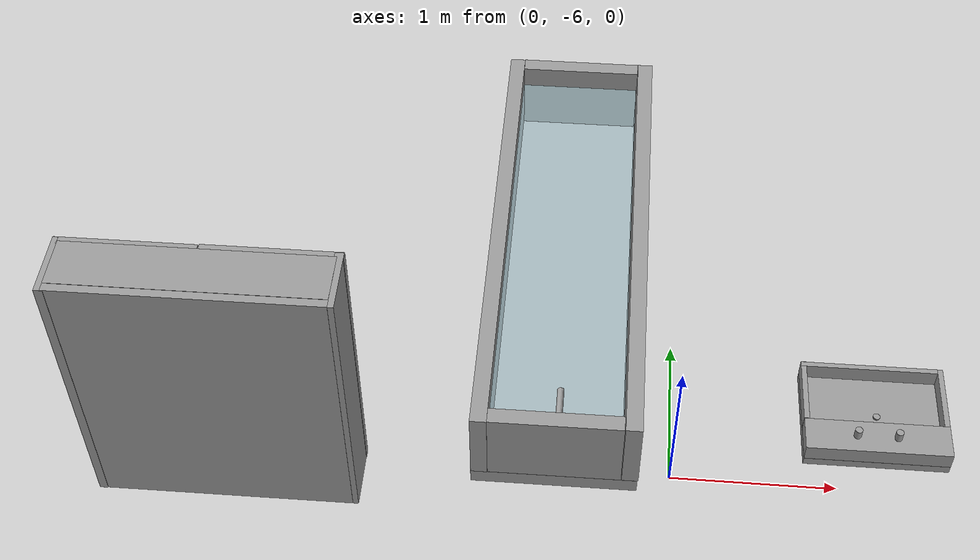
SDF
<sdf version="1.7">
 <world name="default">
  <model name="ground_plane">
   <static>1</static>
   <link name="link">
    <collision name="collision">
     <geometry><plane><normal>0 0 1</normal><size>100 100</size></plane></geometry>
     <surface>
      <contact><collide_bitmask>65535</collide_bitmask></contact>
      <friction><ode><mu>100</mu><mu2>50</mu2></ode></friction>
     </surface>
    </collision>
    <visual name="visual">
     <cast_shadows>0</cast_shadows>
     <geometry><plane><normal>0 0 1</normal><size>100 100</size></plane></geometry>
     <material>
      <script><uri>file://media/materials/scripts/gazebo.material</uri><name>Gazebo/Grey</name></script>
     </material>
    </visual>
   </link>
  </model>
  <model name="my_bath">
   <link name="link_0">
    <inertial>
     <mass>1</mass>
     <inertia>
      <ixx>0.166667</ixx>
      <ixy>0</ixy>
      <ixz>0</ixz>
      <iyy>0.166667</iyy>
      <iyz>0</iyz>
      <izz>0.166667</izz>
     </inertia>
     <pose>0 0 1 0 -0 0</pose>
    </inertial>
    <pose>-0.340094 1.14387 0 0 -0 0</pose>
    <gravity>0</gravity>
    <visual name="visual">
     <pose>0 0 0.045 0 -0 0</pose>
     <geometry><box><size>1 3.2 0.1</size></box></geometry>
     <material>
      <lighting>1</lighting>
      <script><uri>file://media/materials/scripts/gazebo.material</uri><name>Gazebo/Grey</name></script>
      <shader type="pixel"><normal_map>__default__</normal_map></shader>
      <ambient>0.8 0.8 0.8 1</ambient>
      <diffuse>0.65 0.65 0.65 1</diffuse>
      <specular>0.01 0.01 0.01 1</specular>
      <emissive>0.1 0.1 0.1 1</emissive>
     </material>
    </visual>
    <collision name="collision">
     <pose>0 0 0.045 0 -0 0</pose>
     <geometry><box><size>1 3.2 0.1</size></box></geometry>
     <surface>
      <friction>
       <ode><mu>1</mu><mu2>1</mu2><fdir1>0 0 0</fdir1><slip1>0</slip1><slip2>0</slip2></ode>
       <torsional>
        <coefficient>1</coefficient>
        <patch_radius>0</patch_radius>
        <surface_radius>0</surface_radius>
        <use_patch_radius>1</use_patch_radius>
        <ode><slip>0</slip></ode>
       </torsional>
      </friction>
      <bounce><restitution_coefficient>0</restitution_coefficient><threshold>1e+06</threshold></bounce>
      <contact>
       <collide_without_contact>0</collide_without_contact>
       <collide_without_contact_bitmask>1</collide_without_contact_bitmask>
       <collide_bitmask>1</collide_bitmask>
       <ode>
        <soft_cfm>0</soft_cfm>
        <soft_erp>0.2</soft_erp>
        <kp>1e+13</kp>
        <kd>1</kd>
        <max_vel>0.01</max_vel>
        <min_depth>0</min_depth>
       </ode>
       <bullet>
        <split_impulse>1</split_impulse>
        <split_impulse_penetration_threshold>-0.01</split_impulse_penetration_threshold>
        <soft_cfm>0</soft_cfm>
        <soft_erp>0.2</soft_erp>
        <kp>1e+13</kp>
        <kd>1</kd>
       </bullet>
      </contact>
     </surface>
    </collision>
   </link>
   <link name="link_0_clone">
    <inertial>
     <mass>1</mass>
     <inertia>
      <ixx>0.166667</ixx>
      <ixy>0</ixy>
      <ixz>0</ixz>
      <iyy>0.166667</iyy>
      <iyz>0</iyz>
      <izz>0.166667</izz>
     </inertia>
     <pose>0 0 1 0 -0 0</pose>
    </inertial>
    <pose>0.070286 1.14392 0.346232 0 1.5707 0</pose>
    <gravity>0</gravity>
    <visual name="visual">
     <pose>0 0 0.045 0 -0 0</pose>
     <geometry><box><size>0.5 3.2 0.1</size></box></geometry>
     <material>
      <lighting>1</lighting>
      <script><uri>file://media/materials/scripts/gazebo.material</uri><name>Gazebo/Grey</name></script>
      <shader type="pixel"><normal_map>__default__</normal_map></shader>
      <ambient>0.8 0.8 0.8 1</ambient>
      <diffuse>0.65 0.65 0.65 1</diffuse>
      <specular>0.01 0.01 0.01 1</specular>
      <emissive>0.1 0.1 0.1 1</emissive>
     </material>
    </visual>
    <collision name="collision">
     <pose>0 0 0.045 0 -0 0</pose>
     <geometry><box><size>0.5 3.2 0.1</size></box></geometry>
     <surface>
      <friction>
       <ode><mu>1</mu><mu2>1</mu2><fdir1>0 0 0</fdir1><slip1>0</slip1><slip2>0</slip2></ode>
       <torsional>
        <coefficient>1</coefficient>
        <patch_radius>0</patch_radius>
        <surface_radius>0</surface_radius>
        <use_patch_radius>1</use_patch_radius>
        <ode><slip>0</slip></ode>
       </torsional>
      </friction>
      <bounce><restitution_coefficient>0</restitution_coefficient><threshold>1e+06</threshold></bounce>
      <contact>
       <collide_without_contact>0</collide_without_contact>
       <collide_without_contact_bitmask>1</collide_without_contact_bitmask>
       <collide_bitmask>1</collide_bitmask>
       <ode>
        <soft_cfm>0</soft_cfm>
        <soft_erp>0.2</soft_erp>
        <kp>1e+13</kp>
        <kd>1</kd>
        <max_vel>0.01</max_vel>
        <min_depth>0</min_depth>
       </ode>
       <bullet>
        <split_impulse>1</split_impulse>
        <split_impulse_penetration_threshold>-0.01</split_impulse_penetration_threshold>
        <soft_cfm>0</soft_cfm>
        <soft_erp>0.2</soft_erp>
        <kp>1e+13</kp>
        <kd>1</kd>
       </bullet>
      </contact>
     </surface>
    </collision>
   </link>
   <link name="link_0_clone_clone">
    <inertial>
     <mass>1</mass>
     <inertia>
      <ixx>0.166667</ixx>
      <ixy>0</ixy>
      <ixz>0</ixz>
      <iyy>0.166667</iyy>
      <iyz>0</iyz>
      <izz>0.166667</izz>
     </inertia>
     <pose>0 0 1 0 -0 0</pose>
    </inertial>
    <pose>-0.834084 1.14237 0.344002 0 1.5707 0</pose>
    <gravity>0</gravity>
    <visual name="visual">
     <pose>0 0 0.045 0 -0 0</pose>
     <geometry><box><size>0.5 3.2 0.1</size></box></geometry>
     <material>
      <lighting>1</lighting>
      <script><uri>file://media/materials/scripts/gazebo.material</uri><name>Gazebo/Grey</name></script>
      <shader type="pixel"><normal_map>__default__</normal_map></shader>
      <ambient>0.8 0.8 0.8 1</ambient>
      <diffuse>0.65 0.65 0.65 1</diffuse>
      <specular>0.01 0.01 0.01 1</specular>
      <emissive>0.1 0.1 0.1 1</emissive>
     </material>
    </visual>
    <collision name="collision">
     <pose>0 0 0.045 0 -0 0</pose>
     <geometry><box><size>0.5 3.2 0.1</size></box></geometry>
     <surface>
      <friction>
       <ode><mu>1</mu><mu2>1</mu2><fdir1>0 0 0</fdir1><slip1>0</slip1><slip2>0</slip2></ode>
       <torsional>
        <coefficient>1</coefficient>
        <patch_radius>0</patch_radius>
        <surface_radius>0</surface_radius>
        <use_patch_radius>1</use_patch_radius>
        <ode><slip>0</slip></ode>
       </torsional>
      </friction>
      <bounce><restitution_coefficient>0</restitution_coefficient><threshold>1e+06</threshold></bounce>
      <contact>
       <collide_without_contact>0</collide_without_contact>
       <collide_without_contact_bitmask>1</collide_without_contact_bitmask>
       <collide_bitmask>1</collide_bitmask>
       <ode>
        <soft_cfm>0</soft_cfm>
        <soft_erp>0.2</soft_erp>
        <kp>1e+13</kp>
        <kd>1</kd>
        <max_vel>0.01</max_vel>
        <min_depth>0</min_depth>
       </ode>
       <bullet>
        <split_impulse>1</split_impulse>
        <split_impulse_penetration_threshold>-0.01</split_impulse_penetration_threshold>
        <soft_cfm>0</soft_cfm>
        <soft_erp>0.2</soft_erp>
        <kp>1e+13</kp>
        <kd>1</kd>
       </bullet>
      </contact>
     </surface>
    </collision>
   </link>
   <link name="link_0_clone_clone_clone">
    <inertial>
     <mass>1</mass>
     <inertia>
      <ixx>0.166667</ixx>
      <ixy>0</ixy>
      <ixz>0</ixz>
      <iyy>0.166667</iyy>
      <iyz>0</iyz>
      <izz>0.166667</izz>
     </inertia>
     <pose>0 0 1 0 -0 0</pose>
    </inertial>
    <pose>-0.383879 -0.405622 0.343978 0 1.5707 0</pose>
    <gravity>0</gravity>
    <visual name="visual">
     <pose>0 0 0.045 1.5707 -0 0</pose>
     <geometry><box><size>0.5 0.8 0.1</size></box></geometry>
     <material>
      <lighting>1</lighting>
      <script><uri>file://media/materials/scripts/gazebo.material</uri><name>Gazebo/Grey</name></script>
      <shader type="pixel"><normal_map>__default__</normal_map></shader>
      <ambient>0.8 0.8 0.8 1</ambient>
      <diffuse>0.65 0.65 0.65 1</diffuse>
      <specular>0.01 0.01 0.01 1</specular>
      <emissive>0.1 0.1 0.1 1</emissive>
     </material>
    </visual>
    <collision name="collision">
     <pose>0 0 0.045 1.5707 -0 0</pose>
     <geometry><box><size>0.5 0.8 0.1</size></box></geometry>
     <surface>
      <friction>
       <ode><mu>1</mu><mu2>1</mu2><fdir1>0 0 0</fdir1><slip1>0</slip1><slip2>0</slip2></ode>
       <torsional>
        <coefficient>1</coefficient>
        <patch_radius>0</patch_radius>
        <surface_radius>0</surface_radius>
        <use_patch_radius>1</use_patch_radius>
        <ode><slip>0</slip></ode>
       </torsional>
      </friction>
      <bounce><restitution_coefficient>0</restitution_coefficient><threshold>1e+06</threshold></bounce>
      <contact>
       <collide_without_contact>0</collide_without_contact>
       <collide_without_contact_bitmask>1</collide_without_contact_bitmask>
       <collide_bitmask>1</collide_bitmask>
       <ode>
        <soft_cfm>0</soft_cfm>
        <soft_erp>0.2</soft_erp>
        <kp>1e+13</kp>
        <kd>1</kd>
        <max_vel>0.01</max_vel>
        <min_depth>0</min_depth>
       </ode>
       <bullet>
        <split_impulse>1</split_impulse>
        <split_impulse_penetration_threshold>-0.01</split_impulse_penetration_threshold>
        <soft_cfm>0</soft_cfm>
        <soft_erp>0.2</soft_erp>
        <kp>1e+13</kp>
        <kd>1</kd>
       </bullet>
      </contact>
     </surface>
    </collision>
   </link>
   <link name="link_0_clone_clone_clone_clone">
    <inertial>
     <mass>1</mass>
     <inertia>
      <ixx>0.166667</ixx>
      <ixy>0</ixy>
      <ixz>0</ixz>
      <iyy>0.166667</iyy>
      <iyz>0</iyz>
      <izz>0.166667</izz>
     </inertia>
     <pose>0 0 1 0 -0 0</pose>
    </inertial>
    <pose>-0.382409 2.69474 0.343978 0 1.5707 0</pose>
    <gravity>0</gravity>
    <visual name="visual">
     <pose>0 0 0.045 1.5707 -0 0</pose>
     <geometry><box><size>0.5 0.8 0.1</size></box></geometry>
     <material>
      <lighting>1</lighting>
      <script><uri>file://media/materials/scripts/gazebo.material</uri><name>Gazebo/Grey</name></script>
      <shader type="pixel"><normal_map>__default__</normal_map></shader>
      <ambient>0.8 0.8 0.8 1</ambient>
      <diffuse>0.65 0.65 0.65 1</diffuse>
      <specular>0.01 0.01 0.01 1</specular>
      <emissive>0.1 0.1 0.1 1</emissive>
     </material>
    </visual>
    <collision name="collision">
     <pose>0 0 0.045 1.5707 -0 0</pose>
     <geometry><box><size>0.5 0.8 0.1</size></box></geometry>
     <surface>
      <friction>
       <ode><mu>1</mu><mu2>1</mu2><fdir1>0 0 0</fdir1><slip1>0</slip1><slip2>0</slip2></ode>
       <torsional>
        <coefficient>1</coefficient>
        <patch_radius>0</patch_radius>
        <surface_radius>0</surface_radius>
        <use_patch_radius>1</use_patch_radius>
        <ode><slip>0</slip></ode>
       </torsional>
      </friction>
      <bounce><restitution_coefficient>0</restitution_coefficient><threshold>1e+06</threshold></bounce>
      <contact>
       <collide_without_contact>0</collide_without_contact>
       <collide_without_contact_bitmask>1</collide_without_contact_bitmask>
       <collide_bitmask>1</collide_bitmask>
       <ode>
        <soft_cfm>0</soft_cfm>
        <soft_erp>0.2</soft_erp>
        <kp>1e+13</kp>
        <kd>1</kd>
        <max_vel>0.01</max_vel>
        <min_depth>0</min_depth>
       </ode>
       <bullet>
        <split_impulse>1</split_impulse>
        <split_impulse_penetration_threshold>-0.01</split_impulse_penetration_threshold>
        <soft_cfm>0</soft_cfm>
        <soft_erp>0.2</soft_erp>
        <kp>1e+13</kp>
        <kd>1</kd>
       </bullet>
      </contact>
     </surface>
    </collision>
   </link>
   <link name="link_1">
    <inertial>
     <mass>1</mass>
     <inertia>
      <ixx>0.166667</ixx>
      <ixy>0</ixy>
      <ixz>0</ixz>
      <iyy>0.166667</iyy>
      <iyz>0</iyz>
      <izz>0.166667</izz>
     </inertia>
    </inertial>
    <pose>-0.340085 1.16225 0 0 -0 0</pose>
    <visual name="visual">
     <pose>0 0 0.27 0 -0 0</pose>
     <geometry><box><size>0.8 3 0.35</size></box></geometry>
     <material>
      <lighting>1</lighting>
      <script><uri>file://media/materials/scripts/gazebo.material</uri><name>Gazebo/Grey</name></script>
      <shader type="pixel"><normal_map>__default__</normal_map></shader>
      <ambient>0.75 0.93 0.98 0.4</ambient>
      <diffuse>0.75 0.93 0.98 0.4</diffuse>
      <specular>0.01 0.01 0.01 0.4</specular>
      <emissive>0 0 0 0.4</emissive>
     </material>
     <transparency>0.5</transparency>
    </visual>
    <collision name="collision">
     <pose>0 0 0.27 0 -0 0</pose>
     <geometry><box><size>0.8 3 0.35</size></box></geometry>
     <surface>
      <friction>
       <ode><mu>1</mu><mu2>1</mu2><fdir1>0 0 0</fdir1><slip1>0</slip1><slip2>0</slip2></ode>
       <torsional>
        <coefficient>1</coefficient>
        <patch_radius>0</patch_radius>
        <surface_radius>0</surface_radius>
        <use_patch_radius>1</use_patch_radius>
        <ode><slip>0</slip></ode>
       </torsional>
      </friction>
      <bounce><restitution_coefficient>0</restitution_coefficient><threshold>1e+06</threshold></bounce>
      <contact>
       <collide_without_contact>0</collide_without_contact>
       <collide_without_contact_bitmask>1</collide_without_contact_bitmask>
       <collide_bitmask>1</collide_bitmask>
       <ode>
        <soft_cfm>0</soft_cfm>
        <soft_erp>0.2</soft_erp>
        <kp>1e+13</kp>
        <kd>1</kd>
        <max_vel>0.01</max_vel>
        <min_depth>0</min_depth>
       </ode>
       <bullet>
        <split_impulse>1</split_impulse>
        <split_impulse_penetration_threshold>-0.01</split_impulse_penetration_threshold>
        <soft_cfm>0</soft_cfm>
        <soft_erp>0.2</soft_erp>
        <kp>1e+13</kp>
        <kd>1</kd>
       </bullet>
      </contact>
     </surface>
    </collision>
   </link>
   <link name="link_2">
    <inertial>
     <mass>1</mass>
     <inertia><ixx>0.145833</ixx><ixy>0</ixy><ixz>0</ixz><iyy>0.145833</iyy><iyz>0</iyz><izz>0.125</izz></inertia>
    </inertial>
    <pose>-0.32388 -0.261877 0.559506 0 -0 0</pose>
    <gravity>0</gravity>
    <visual name="visual">
     <pose>0 0 0 1.5707 -0 0</pose>
     <geometry><cylinder><radius>0.02</radius><length>0.2</length></cylinder></geometry>
     <material>
      <lighting>1</lighting>
      <script><uri>file://media/materials/scripts/gazebo.material</uri><name>Gazebo/Grey</name></script>
      <shader type="pixel"><normal_map>__default__</normal_map></shader>
      <ambient>0.8 0.8 0.8 1</ambient>
      <diffuse>0.2 0.2 0.2 1</diffuse>
      <specular>0.01 0.01 0.01 1</specular>
      <emissive>0 0 0 1</emissive>
     </material>
    </visual>
    <collision name="collision">
     <pose>0 0 0 1.5707 -0 0</pose>
     <geometry><cylinder><radius>0.02</radius><length>0.2</length></cylinder></geometry>
     <surface>
      <friction>
       <ode><mu>1</mu><mu2>1</mu2><fdir1>0 0 0</fdir1><slip1>0</slip1><slip2>0</slip2></ode>
       <torsional>
        <coefficient>1</coefficient>
        <patch_radius>0</patch_radius>
        <surface_radius>0</surface_radius>
        <use_patch_radius>1</use_patch_radius>
        <ode><slip>0</slip></ode>
       </torsional>
      </friction>
      <bounce><restitution_coefficient>0</restitution_coefficient><threshold>1e+06</threshold></bounce>
      <contact>
       <collide_without_contact>0</collide_without_contact>
       <collide_without_contact_bitmask>1</collide_without_contact_bitmask>
       <collide_bitmask>1</collide_bitmask>
       <ode>
        <soft_cfm>0</soft_cfm>
        <soft_erp>0.2</soft_erp>
        <kp>1e+13</kp>
        <kd>1</kd>
        <max_vel>0.01</max_vel>
        <min_depth>0</min_depth>
       </ode>
       <bullet>
        <split_impulse>1</split_impulse>
        <split_impulse_penetration_threshold>-0.01</split_impulse_penetration_threshold>
        <soft_cfm>0</soft_cfm>
        <soft_erp>0.2</soft_erp>
        <kp>1e+13</kp>
        <kd>1</kd>
       </bullet>
      </contact>
     </surface>
    </collision>
   </link>
   <static>1</static>
   <pose>-0.35818 -5.6468 0 0 -0 0</pose>
  </model>
  <model name="my_sink">
   <link name="link_1">
    <inertial>
     <mass>1</mass>
     <inertia>
      <ixx>0.166667</ixx>
      <ixy>0</ixy>
      <ixz>0</ixz>
      <iyy>0.166667</iyy>
      <iyz>0</iyz>
      <izz>0.166667</izz>
     </inertia>
    </inertial>
    <pose>-0.339251 0.324347 0.253041 -3e-06 -4e-06 -0</pose>
    <visual name="visual">
     <pose>0 0 0.5 0 -0 0</pose>
     <geometry><box><size>0.8 0.6 0.05</size></box></geometry>
     <material>
      <lighting>1</lighting>
      <script><uri>file://media/materials/scripts/gazebo.material</uri><name>Gazebo/Grey</name></script>
      <shader type="pixel"><normal_map>__default__</normal_map></shader>
      <ambient>0.9 0.9 0.9 1</ambient>
      <diffuse>0.9 0.9 0.9 1</diffuse>
      <specular>0.01 0.01 0.01 1</specular>
      <emissive>0 0 0 1</emissive>
     </material>
    </visual>
    <collision name="collision">
     <pose>0 0 0.5 0 -0 0</pose>
     <geometry><box><size>0.8 0.6 0.05</size></box></geometry>
     <surface>
      <friction>
       <ode><mu>1</mu><mu2>1</mu2><fdir1>0 0 0</fdir1><slip1>0</slip1><slip2>0</slip2></ode>
       <torsional>
        <coefficient>1</coefficient>
        <patch_radius>0</patch_radius>
        <surface_radius>0</surface_radius>
        <use_patch_radius>1</use_patch_radius>
        <ode><slip>0</slip></ode>
       </torsional>
      </friction>
      <bounce><restitution_coefficient>0</restitution_coefficient><threshold>1e+06</threshold></bounce>
      <contact>
       <collide_without_contact>0</collide_without_contact>
       <collide_without_contact_bitmask>1</collide_without_contact_bitmask>
       <collide_bitmask>1</collide_bitmask>
       <ode>
        <soft_cfm>0</soft_cfm>
        <soft_erp>0.2</soft_erp>
        <kp>1e+13</kp>
        <kd>1</kd>
        <max_vel>0.01</max_vel>
        <min_depth>0</min_depth>
       </ode>
       <bullet>
        <split_impulse>1</split_impulse>
        <split_impulse_penetration_threshold>-0.01</split_impulse_penetration_threshold>
        <soft_cfm>0</soft_cfm>
        <soft_erp>0.2</soft_erp>
        <kp>1e+13</kp>
        <kd>1</kd>
       </bullet>
      </contact>
     </surface>
    </collision>
   </link>
   <link name="link_1_0">
    <inertial>
     <mass>1</mass>
     <inertia><ixx>0.145833</ixx><ixy>0</ixy><ixz>0</ixz><iyy>0.145833</iyy><iyz>0</iyz><izz>0.125</izz></inertia>
    </inertial>
    <pose>-0.354606 0.332912 0.806035 0 -0 0</pose>
    <gravity>0</gravity>
    <visual name="visual">
     <geometry><cylinder><radius>0.02</radius><length>0.01</length></cylinder></geometry>
     <material>
      <lighting>1</lighting>
      <script><uri>file://media/materials/scripts/gazebo.material</uri><name>Gazebo/Grey</name></script>
      <shader type="pixel"><normal_map>__default__</normal_map></shader>
      <ambient>0.3 0.3 0.3 0</ambient>
      <diffuse>0.3 0.3 0.3 1</diffuse>
      <specular>0.01 0.01 0.01 1</specular>
      <emissive>0 0 0 1</emissive>
     </material>
    </visual>
    <collision name="collision">
     <geometry><cylinder><radius>0.02</radius><length>0.01</length></cylinder></geometry>
     <surface>
      <friction>
       <ode><mu>1</mu><mu2>1</mu2><fdir1>0 0 0</fdir1><slip1>0</slip1><slip2>0</slip2></ode>
       <torsional>
        <coefficient>1</coefficient>
        <patch_radius>0</patch_radius>
        <surface_radius>0</surface_radius>
        <use_patch_radius>1</use_patch_radius>
        <ode><slip>0</slip></ode>
       </torsional>
      </friction>
      <bounce><restitution_coefficient>0</restitution_coefficient><threshold>1e+06</threshold></bounce>
      <contact>
       <collide_without_contact>0</collide_without_contact>
       <collide_without_contact_bitmask>1</collide_without_contact_bitmask>
       <collide_bitmask>1</collide_bitmask>
       <ode>
        <soft_cfm>0</soft_cfm>
        <soft_erp>0.2</soft_erp>
        <kp>1e+13</kp>
        <kd>1</kd>
        <max_vel>0.01</max_vel>
        <min_depth>0</min_depth>
       </ode>
       <bullet>
        <split_impulse>1</split_impulse>
        <split_impulse_penetration_threshold>-0.01</split_impulse_penetration_threshold>
        <soft_cfm>0</soft_cfm>
        <soft_erp>0.2</soft_erp>
        <kp>1e+13</kp>
        <kd>1</kd>
       </bullet>
      </contact>
     </surface>
    </collision>
   </link>
   <link name="link_1_0_clone">
    <inertial>
     <mass>1</mass>
     <inertia><ixx>0.145833</ixx><ixy>0</ixy><ixz>0</ixz><iyy>0.145833</iyy><iyz>0</iyz><izz>0.125</izz></inertia>
    </inertial>
    <pose>-0.447025 0.525674 0.904806 0 -0 0</pose>
    <visual name="visual">
     <geometry><cylinder><radius>0.021</radius><length>0.06</length></cylinder></geometry>
     <material>
      <lighting>1</lighting>
      <script><uri>file://media/materials/scripts/gazebo.material</uri><name>Gazebo/Grey</name></script>
      <shader type="pixel"><normal_map>__default__</normal_map></shader>
      <ambient>0.3 0.3 0.3 0</ambient>
      <diffuse>0.3 0.3 0.3 1</diffuse>
      <specular>0.01 0.01 0.01 1</specular>
      <emissive>0 0 0 1</emissive>
     </material>
    </visual>
    <collision name="collision">
     <geometry><cylinder><radius>0.021</radius><length>0.06</length></cylinder></geometry>
     <surface>
      <friction>
       <ode><mu>1</mu><mu2>1</mu2><fdir1>0 0 0</fdir1><slip1>0</slip1><slip2>0</slip2></ode>
       <torsional>
        <coefficient>1</coefficient>
        <patch_radius>0</patch_radius>
        <surface_radius>0</surface_radius>
        <use_patch_radius>1</use_patch_radius>
        <ode><slip>0</slip></ode>
       </torsional>
      </friction>
      <bounce><restitution_coefficient>0</restitution_coefficient><threshold>1e+06</threshold></bounce>
      <contact>
       <collide_without_contact>0</collide_without_contact>
       <collide_without_contact_bitmask>1</collide_without_contact_bitmask>
       <collide_bitmask>1</collide_bitmask>
       <ode>
        <soft_cfm>0</soft_cfm>
        <soft_erp>0.2</soft_erp>
        <kp>1e+13</kp>
        <kd>1</kd>
        <max_vel>0.01</max_vel>
        <min_depth>0</min_depth>
       </ode>
       <bullet>
        <split_impulse>1</split_impulse>
        <split_impulse_penetration_threshold>-0.01</split_impulse_penetration_threshold>
        <soft_cfm>0</soft_cfm>
        <soft_erp>0.2</soft_erp>
        <kp>1e+13</kp>
        <kd>1</kd>
       </bullet>
      </contact>
     </surface>
    </collision>
   </link>
   <link name="link_1_0_clone_clone">
    <inertial>
     <mass>1</mass>
     <inertia><ixx>0.145833</ixx><ixy>0</ixy><ixz>0</ixz><iyy>0.145833</iyy><iyz>0</iyz><izz>0.125</izz></inertia>
    </inertial>
    <pose>-0.224674 0.524945 0.904806 0 -0 0</pose>
    <visual name="visual">
     <geometry><cylinder><radius>0.021</radius><length>0.06</length></cylinder></geometry>
     <material>
      <lighting>1</lighting>
      <script><uri>file://media/materials/scripts/gazebo.material</uri><name>Gazebo/Grey</name></script>
      <shader type="pixel"><normal_map>__default__</normal_map></shader>
      <ambient>0.3 0.3 0.3 0</ambient>
      <diffuse>0.3 0.3 0.3 1</diffuse>
      <specular>0.01 0.01 0.01 1</specular>
      <emissive>0 0 0 1</emissive>
     </material>
    </visual>
    <collision name="collision">
     <geometry><cylinder><radius>0.021</radius><length>0.06</length></cylinder></geometry>
     <surface>
      <friction>
       <ode><mu>1</mu><mu2>1</mu2><fdir1>0 0 0</fdir1><slip1>0</slip1><slip2>0</slip2></ode>
       <torsional>
        <coefficient>1</coefficient>
        <patch_radius>0</patch_radius>
        <surface_radius>0</surface_radius>
        <use_patch_radius>1</use_patch_radius>
        <ode><slip>0</slip></ode>
       </torsional>
      </friction>
      <bounce><restitution_coefficient>0</restitution_coefficient><threshold>1e+06</threshold></bounce>
      <contact>
       <collide_without_contact>0</collide_without_contact>
       <collide_without_contact_bitmask>1</collide_without_contact_bitmask>
       <collide_bitmask>1</collide_bitmask>
       <ode>
        <soft_cfm>0</soft_cfm>
        <soft_erp>0.2</soft_erp>
        <kp>1e+13</kp>
        <kd>1</kd>
        <max_vel>0.01</max_vel>
        <min_depth>0</min_depth>
       </ode>
       <bullet>
        <split_impulse>1</split_impulse>
        <split_impulse_penetration_threshold>-0.01</split_impulse_penetration_threshold>
        <soft_cfm>0</soft_cfm>
        <soft_erp>0.2</soft_erp>
        <kp>1e+13</kp>
        <kd>1</kd>
       </bullet>
      </contact>
     </surface>
    </collision>
   </link>
   <link name="link_1_clone">
    <inertial>
     <mass>1</mass>
     <inertia>
      <ixx>0.166667</ixx>
      <ixy>0</ixy>
      <ixz>0</ixz>
      <iyy>0.166667</iyy>
      <iyz>0</iyz>
      <izz>0.166667</izz>
     </inertia>
    </inertial>
    <pose>-0.339505 0.038648 0.327445 -6e-06 -8e-06 0</pose>
    <visual name="visual">
     <pose>0 0 0.5 0 -0 0</pose>
     <geometry><box><size>0.8 0.03 0.1</size></box></geometry>
     <material>
      <lighting>1</lighting>
      <script><uri>file://media/materials/scripts/gazebo.material</uri><name>Gazebo/Grey</name></script>
      <shader type="pixel"><normal_map>__default__</normal_map></shader>
      <ambient>0.9 0.9 0.9 1</ambient>
      <diffuse>0.9 0.9 0.9 1</diffuse>
      <specular>0.01 0.01 0.01 1</specular>
      <emissive>0 0 0 1</emissive>
     </material>
    </visual>
    <collision name="collision">
     <pose>0 0 0.5 0 -0 0</pose>
     <geometry><box><size>0.8 0.03 0.1</size></box></geometry>
     <surface>
      <friction>
       <ode><mu>1</mu><mu2>1</mu2><fdir1>0 0 0</fdir1><slip1>0</slip1><slip2>0</slip2></ode>
       <torsional>
        <coefficient>1</coefficient>
        <patch_radius>0</patch_radius>
        <surface_radius>0</surface_radius>
        <use_patch_radius>1</use_patch_radius>
        <ode><slip>0</slip></ode>
       </torsional>
      </friction>
      <bounce><restitution_coefficient>0</restitution_coefficient><threshold>1e+06</threshold></bounce>
      <contact>
       <collide_without_contact>0</collide_without_contact>
       <collide_without_contact_bitmask>1</collide_without_contact_bitmask>
       <collide_bitmask>1</collide_bitmask>
       <ode>
        <soft_cfm>0</soft_cfm>
        <soft_erp>0.2</soft_erp>
        <kp>1e+13</kp>
        <kd>1</kd>
        <max_vel>0.01</max_vel>
        <min_depth>0</min_depth>
       </ode>
       <bullet>
        <split_impulse>1</split_impulse>
        <split_impulse_penetration_threshold>-0.01</split_impulse_penetration_threshold>
        <soft_cfm>0</soft_cfm>
        <soft_erp>0.2</soft_erp>
        <kp>1e+13</kp>
        <kd>1</kd>
       </bullet>
      </contact>
     </surface>
    </collision>
   </link>
   <link name="link_1_clone_clone">
    <inertial>
     <mass>1</mass>
     <inertia>
      <ixx>0.166667</ixx>
      <ixy>0</ixy>
      <ixz>0</ixz>
      <iyy>0.166667</iyy>
      <iyz>0</iyz>
      <izz>0.166667</izz>
     </inertia>
    </inertial>
    <pose>-0.3399 0.523683 0.327445 -6e-06 -8e-06 0</pose>
    <visual name="visual">
     <pose>0 0 0.5 0 -0 0</pose>
     <geometry><box><size>0.8 0.2 0.1</size></box></geometry>
     <material>
      <lighting>1</lighting>
      <script><uri>file://media/materials/scripts/gazebo.material</uri><name>Gazebo/Grey</name></script>
      <shader type="pixel"><normal_map>__default__</normal_map></shader>
      <ambient>0.9 0.9 0.9 1</ambient>
      <diffuse>0.9 0.9 0.9 1</diffuse>
      <specular>0.01 0.01 0.01 1</specular>
      <emissive>0 0 0 1</emissive>
     </material>
    </visual>
    <collision name="collision">
     <pose>0 0 0.5 0 -0 0</pose>
     <geometry><box><size>0.8 0.03 0.1</size></box></geometry>
     <surface>
      <friction>
       <ode><mu>1</mu><mu2>1</mu2><fdir1>0 0 0</fdir1><slip1>0</slip1><slip2>0</slip2></ode>
       <torsional>
        <coefficient>1</coefficient>
        <patch_radius>0</patch_radius>
        <surface_radius>0</surface_radius>
        <use_patch_radius>1</use_patch_radius>
        <ode><slip>0</slip></ode>
       </torsional>
      </friction>
      <bounce><restitution_coefficient>0</restitution_coefficient><threshold>1e+06</threshold></bounce>
      <contact>
       <collide_without_contact>0</collide_without_contact>
       <collide_without_contact_bitmask>1</collide_without_contact_bitmask>
       <collide_bitmask>1</collide_bitmask>
       <ode>
        <soft_cfm>0</soft_cfm>
        <soft_erp>0.2</soft_erp>
        <kp>1e+13</kp>
        <kd>1</kd>
        <max_vel>0.01</max_vel>
        <min_depth>0</min_depth>
       </ode>
       <bullet>
        <split_impulse>1</split_impulse>
        <split_impulse_penetration_threshold>-0.01</split_impulse_penetration_threshold>
        <soft_cfm>0</soft_cfm>
        <soft_erp>0.2</soft_erp>
        <kp>1e+13</kp>
        <kd>1</kd>
       </bullet>
      </contact>
     </surface>
    </collision>
   </link>
   <link name="link_1_clone_clone_0">
    <inertial>
     <mass>1</mass>
     <inertia>
      <ixx>0.166667</ixx>
      <ixy>0</ixy>
      <ixz>0</ixz>
      <iyy>0.166667</iyy>
      <iyz>0</iyz>
      <izz>0.166667</izz>
     </inertia>
    </inertial>
    <pose>-0.725159 0.224068 0.327441 -6e-06 -8e-06 0</pose>
    <visual name="visual">
     <pose>0 0 0.5 0 -0 1.5707</pose>
     <geometry><box><size>0.4 0.03 0.1</size></box></geometry>
     <material>
      <lighting>1</lighting>
      <script><uri>file://media/materials/scripts/gazebo.material</uri><name>Gazebo/Grey</name></script>
      <shader type="pixel"><normal_map>__default__</normal_map></shader>
      <ambient>0.9 0.9 0.9 1</ambient>
      <diffuse>0.9 0.9 0.9 1</diffuse>
      <specular>0.01 0.01 0.01 1</specular>
      <emissive>0 0 0 1</emissive>
     </material>
    </visual>
    <collision name="collision">
     <pose>0 0 0.5 0 -0 1.5707</pose>
     <geometry><box><size>0.4 0.03 0.1</size></box></geometry>
     <surface>
      <friction>
       <ode><mu>1</mu><mu2>1</mu2><fdir1>0 0 0</fdir1><slip1>0</slip1><slip2>0</slip2></ode>
       <torsional>
        <coefficient>1</coefficient>
        <patch_radius>0</patch_radius>
        <surface_radius>0</surface_radius>
        <use_patch_radius>1</use_patch_radius>
        <ode><slip>0</slip></ode>
       </torsional>
      </friction>
      <bounce><restitution_coefficient>0</restitution_coefficient><threshold>1e+06</threshold></bounce>
      <contact>
       <collide_without_contact>0</collide_without_contact>
       <collide_without_contact_bitmask>1</collide_without_contact_bitmask>
       <collide_bitmask>1</collide_bitmask>
       <ode>
        <soft_cfm>0</soft_cfm>
        <soft_erp>0.2</soft_erp>
        <kp>1e+13</kp>
        <kd>1</kd>
        <max_vel>0.01</max_vel>
        <min_depth>0</min_depth>
       </ode>
       <bullet>
        <split_impulse>1</split_impulse>
        <split_impulse_penetration_threshold>-0.01</split_impulse_penetration_threshold>
        <soft_cfm>0</soft_cfm>
        <soft_erp>0.2</soft_erp>
        <kp>1e+13</kp>
        <kd>1</kd>
       </bullet>
      </contact>
     </surface>
    </collision>
   </link>
   <link name="link_1_clone_clone_0_clone">
    <inertial>
     <mass>1</mass>
     <inertia>
      <ixx>0.166667</ixx>
      <ixy>0</ixy>
      <ixz>0</ixz>
      <iyy>0.166667</iyy>
      <iyz>0</iyz>
      <izz>0.166667</izz>
     </inertia>
    </inertial>
    <pose>0.045938 0.221634 0.327447 -6e-06 -8e-06 0</pose>
    <visual name="visual">
     <pose>0 0 0.5 0 -0 1.5707</pose>
     <geometry><box><size>0.4 0.03 0.1</size></box></geometry>
     <material>
      <lighting>1</lighting>
      <script><uri>file://media/materials/scripts/gazebo.material</uri><name>Gazebo/Grey</name></script>
      <shader type="pixel"><normal_map>__default__</normal_map></shader>
      <ambient>0.9 0.9 0.9 1</ambient>
      <diffuse>0.9 0.9 0.9 1</diffuse>
      <specular>0.01 0.01 0.01 1</specular>
      <emissive>0 0 0 1</emissive>
     </material>
    </visual>
    <collision name="collision">
     <pose>0 0 0.5 0 -0 1.5707</pose>
     <geometry><box><size>0.4 0.03 0.1</size></box></geometry>
     <surface>
      <friction>
       <ode><mu>1</mu><mu2>1</mu2><fdir1>0 0 0</fdir1><slip1>0</slip1><slip2>0</slip2></ode>
       <torsional>
        <coefficient>1</coefficient>
        <patch_radius>0</patch_radius>
        <surface_radius>0</surface_radius>
        <use_patch_radius>1</use_patch_radius>
        <ode><slip>0</slip></ode>
       </torsional>
      </friction>
      <bounce><restitution_coefficient>0</restitution_coefficient><threshold>1e+06</threshold></bounce>
      <contact>
       <collide_without_contact>0</collide_without_contact>
       <collide_without_contact_bitmask>1</collide_without_contact_bitmask>
       <collide_bitmask>1</collide_bitmask>
       <ode>
        <soft_cfm>0</soft_cfm>
        <soft_erp>0.2</soft_erp>
        <kp>1e+13</kp>
        <kd>1</kd>
        <max_vel>0.01</max_vel>
        <min_depth>0</min_depth>
       </ode>
       <bullet>
        <split_impulse>1</split_impulse>
        <split_impulse_penetration_threshold>-0.01</split_impulse_penetration_threshold>
        <soft_cfm>0</soft_cfm>
        <soft_erp>0.2</soft_erp>
        <kp>1e+13</kp>
        <kd>1</kd>
       </bullet>
      </contact>
     </surface>
    </collision>
   </link>
   <static>1</static>
   <pose>0.74335 -5.72113 -0 0 -0 3.14159</pose>
  </model>
  <model name="my_wardrobe">
   <link name="link">
    <inertial>
     <mass>1</mass>
     <inertia>
      <ixx>0.166667</ixx>
      <ixy>0</ixy>
      <ixz>0</ixz>
      <iyy>0.166667</iyy>
      <iyz>0</iyz>
      <izz>0.166667</izz>
     </inertia>
    </inertial>
    <pose>0.010503 -0.018536 0.006993 0 -0 0</pose>
    <visual name="visual">
     <geometry><box><size>0.05 1.5 1.8</size></box></geometry>
     <material>
      <script><name>Gazebo/Grey</name><uri>file://media/materials/scripts/gazebo.material</uri></script>
      <shader type="pixel"><normal_map>__default__</normal_map></shader>
      <ambient>0.9 0.9 0.9 1</ambient>
      <diffuse>0.9 0.9 0.9 1</diffuse>
      <specular>0.01 0.01 0.01 1</specular>
      <emissive>0 0 0 1</emissive>
     </material>
     <pose>0 0 0.9 0 -0 0</pose>
    </visual>
    <collision name="collision">
     <pose>0 0 0.9 0 -0 0</pose>
     <geometry><box><size>0.05 1.5 1.8</size></box></geometry>
     <surface>
      <friction>
       <ode><mu>1</mu><mu2>1</mu2><fdir1>0 0 0</fdir1><slip1>0</slip1><slip2>0</slip2></ode>
       <torsional>
        <coefficient>1</coefficient>
        <patch_radius>0</patch_radius>
        <surface_radius>0</surface_radius>
        <use_patch_radius>1</use_patch_radius>
        <ode><slip>0</slip></ode>
       </torsional>
      </friction>
      <bounce><restitution_coefficient>0</restitution_coefficient><threshold>1e+06</threshold></bounce>
      <contact>
       <collide_without_contact>0</collide_without_contact>
       <collide_without_contact_bitmask>1</collide_without_contact_bitmask>
       <collide_bitmask>1</collide_bitmask>
       <ode>
        <soft_cfm>0</soft_cfm>
        <soft_erp>0.2</soft_erp>
        <kp>1e+13</kp>
        <kd>1</kd>
        <max_vel>0.01</max_vel>
        <min_depth>0</min_depth>
       </ode>
       <bullet>
        <split_impulse>1</split_impulse>
        <split_impulse_penetration_threshold>-0.01</split_impulse_penetration_threshold>
        <soft_cfm>0</soft_cfm>
        <soft_erp>0.2</soft_erp>
        <kp>1e+13</kp>
        <kd>1</kd>
       </bullet>
      </contact>
     </surface>
    </collision>
   </link>
   <link name="link_1">
    <inertial>
     <mass>1</mass>
     <inertia>
      <ixx>0.166667</ixx>
      <ixy>0</ixy>
      <ixz>0</ixz>
      <iyy>0.166667</iyy>
      <iyz>0</iyz>
      <izz>0.166667</izz>
     </inertia>
    </inertial>
    <pose>0.374225 0.148278 0.975818 0 0 -1.57963</pose>
    <visual name="visual">
     <geometry><box><size>0.015 0.01 0.15</size></box></geometry>
     <material>
      <lighting>1</lighting>
      <script><uri>file://media/materials/scripts/gazebo.material</uri><name>Gazebo/Grey</name></script>
      <shader type="pixel"><normal_map>__default__</normal_map></shader>
      <ambient>0.3 0.3 0.3 1</ambient>
      <diffuse>0.7 0.7 0.7 1</diffuse>
      <specular>0.01 0.01 0.01 1</specular>
      <emissive>0 0 0 1</emissive>
     </material>
    </visual>
    <collision name="collision">
     <geometry><box><size>0.015 0.01 0.15</size></box></geometry>
     <surface>
      <friction>
       <ode><mu>1</mu><mu2>1</mu2><fdir1>0 0 0</fdir1><slip1>0</slip1><slip2>0</slip2></ode>
       <torsional>
        <coefficient>1</coefficient>
        <patch_radius>0</patch_radius>
        <surface_radius>0</surface_radius>
        <use_patch_radius>1</use_patch_radius>
        <ode><slip>0</slip></ode>
       </torsional>
      </friction>
      <bounce><restitution_coefficient>0</restitution_coefficient><threshold>1e+06</threshold></bounce>
      <contact>
       <collide_without_contact>0</collide_without_contact>
       <collide_without_contact_bitmask>1</collide_without_contact_bitmask>
       <collide_bitmask>1</collide_bitmask>
       <ode>
        <soft_cfm>0</soft_cfm>
        <soft_erp>0.2</soft_erp>
        <kp>1e+13</kp>
        <kd>1</kd>
        <max_vel>0.01</max_vel>
        <min_depth>0</min_depth>
       </ode>
       <bullet>
        <split_impulse>1</split_impulse>
        <split_impulse_penetration_threshold>-0.01</split_impulse_penetration_threshold>
        <soft_cfm>0</soft_cfm>
        <soft_erp>0.2</soft_erp>
        <kp>1e+13</kp>
        <kd>1</kd>
       </bullet>
      </contact>
     </surface>
    </collision>
   </link>
   <link name="link_1_clone">
    <inertial>
     <mass>1</mass>
     <inertia>
      <ixx>0.166667</ixx>
      <ixy>0</ixy>
      <ixz>0</ixz>
      <iyy>0.166667</iyy>
      <iyz>0</iyz>
      <izz>0.166667</izz>
     </inertia>
    </inertial>
    <pose>0.36807 -0.165856 0.973071 0 -0 3.12392</pose>
    <visual name="visual">
     <geometry><box><size>0.015 0.01 0.15</size></box></geometry>
     <material>
      <lighting>1</lighting>
      <script><uri>file://media/materials/scripts/gazebo.material</uri><name>Gazebo/Grey</name></script>
      <shader type="pixel"><normal_map>__default__</normal_map></shader>
      <ambient>0.3 0.3 0.3 1</ambient>
      <diffuse>0.7 0.7 0.7 1</diffuse>
      <specular>0.01 0.01 0.01 1</specular>
      <emissive>0 0 0 1</emissive>
     </material>
    </visual>
    <collision name="collision">
     <geometry><box><size>0.015 0.01 0.15</size></box></geometry>
     <surface>
      <friction>
       <ode><mu>1</mu><mu2>1</mu2><fdir1>0 0 0</fdir1><slip1>0</slip1><slip2>0</slip2></ode>
       <torsional>
        <coefficient>1</coefficient>
        <patch_radius>0</patch_radius>
        <surface_radius>0</surface_radius>
        <use_patch_radius>1</use_patch_radius>
        <ode><slip>0</slip></ode>
       </torsional>
      </friction>
      <bounce><restitution_coefficient>0</restitution_coefficient><threshold>1e+06</threshold></bounce>
      <contact>
       <collide_without_contact>0</collide_without_contact>
       <collide_without_contact_bitmask>1</collide_without_contact_bitmask>
       <collide_bitmask>1</collide_bitmask>
       <ode>
        <soft_cfm>0</soft_cfm>
        <soft_erp>0.2</soft_erp>
        <kp>1e+13</kp>
        <kd>1</kd>
        <max_vel>0.01</max_vel>
        <min_depth>0</min_depth>
       </ode>
       <bullet>
        <split_impulse>1</split_impulse>
        <split_impulse_penetration_threshold>-0.01</split_impulse_penetration_threshold>
        <soft_cfm>0</soft_cfm>
        <soft_erp>0.2</soft_erp>
        <kp>1e+13</kp>
        <kd>1</kd>
       </bullet>
      </contact>
     </surface>
    </collision>
   </link>
   <link name="link_clone">
    <inertial>
     <mass>1</mass>
     <inertia>
      <ixx>0.166667</ixx>
      <ixy>0</ixy>
      <ixz>0</ixz>
      <iyy>0.166667</iyy>
      <iyz>0</iyz>
      <izz>0.166667</izz>
     </inertia>
    </inertial>
    <pose>0.199559 -0.011174 -1.077 1.1e-05 -0.001065 2e-06</pose>
    <visual name="visual">
     <geometry><box><size>0.3 1.5 0.04</size></box></geometry>
     <material>
      <script><name>Gazebo/Grey</name><uri>file://media/materials/scripts/gazebo.material</uri></script>
      <shader type="pixel"><normal_map>__default__</normal_map></shader>
      <ambient>0.9 0.9 0.9 1</ambient>
      <diffuse>0.9 0.9 0.9 1</diffuse>
      <specular>0.01 0.01 0.01 1</specular>
      <emissive>0 0 0 1</emissive>
     </material>
     <pose>0 0 1.1 0 -0 0</pose>
    </visual>
    <collision name="collision">
     <pose>0 0 1.1 0 -0 0</pose>
     <geometry><box><size>0.3 1.5 0.04</size></box></geometry>
     <surface>
      <friction>
       <ode><mu>1</mu><mu2>1</mu2><fdir1>0 0 0</fdir1><slip1>0</slip1><slip2>0</slip2></ode>
       <torsional>
        <coefficient>1</coefficient>
        <patch_radius>0</patch_radius>
        <surface_radius>0</surface_radius>
        <use_patch_radius>1</use_patch_radius>
        <ode><slip>0</slip></ode>
       </torsional>
      </friction>
      <bounce><restitution_coefficient>0</restitution_coefficient><threshold>1e+06</threshold></bounce>
      <contact>
       <collide_without_contact>0</collide_without_contact>
       <collide_without_contact_bitmask>1</collide_without_contact_bitmask>
       <collide_bitmask>1</collide_bitmask>
       <ode>
        <soft_cfm>0</soft_cfm>
        <soft_erp>0.2</soft_erp>
        <kp>1e+13</kp>
        <kd>1</kd>
        <max_vel>0.01</max_vel>
        <min_depth>0</min_depth>
       </ode>
       <bullet>
        <split_impulse>1</split_impulse>
        <split_impulse_penetration_threshold>-0.01</split_impulse_penetration_threshold>
        <soft_cfm>0</soft_cfm>
        <soft_erp>0.2</soft_erp>
        <kp>1e+13</kp>
        <kd>1</kd>
       </bullet>
      </contact>
     </surface>
    </collision>
   </link>
   <link name="link_clone_0">
    <inertial>
     <mass>1</mass>
     <inertia>
      <ixx>0.166667</ixx>
      <ixy>0</ixy>
      <ixz>0</ixz>
      <iyy>0.166667</iyy>
      <iyz>0</iyz>
      <izz>0.166667</izz>
     </inertia>
    </inertial>
    <pose>0.1762 -0.777121 0.006003 0 -0 0</pose>
    <visual name="visual">
     <geometry><box><size>0.05 0.38 1.8</size></box></geometry>
     <material>
      <script><name>Gazebo/Grey</name><uri>file://media/materials/scripts/gazebo.material</uri></script>
      <shader type="pixel"><normal_map>__default__</normal_map></shader>
      <ambient>0.9 0.9 0.9 1</ambient>
      <diffuse>0.9 0.9 0.9 1</diffuse>
      <specular>0.01 0.01 0.01 1</specular>
      <emissive>0 0 0 1</emissive>
     </material>
     <pose>0 0 0.9 0 -0 1.5707</pose>
    </visual>
    <collision name="collision">
     <pose>0 0 0.9 0 -0 1.5707</pose>
     <geometry><box><size>0.05 0.38 1.8</size></box></geometry>
     <surface>
      <friction>
       <ode><mu>1</mu><mu2>1</mu2><fdir1>0 0 0</fdir1><slip1>0</slip1><slip2>0</slip2></ode>
       <torsional>
        <coefficient>1</coefficient>
        <patch_radius>0</patch_radius>
        <surface_radius>0</surface_radius>
        <use_patch_radius>1</use_patch_radius>
        <ode><slip>0</slip></ode>
       </torsional>
      </friction>
      <bounce><restitution_coefficient>0</restitution_coefficient><threshold>1e+06</threshold></bounce>
      <contact>
       <collide_without_contact>0</collide_without_contact>
       <collide_without_contact_bitmask>1</collide_without_contact_bitmask>
       <collide_bitmask>1</collide_bitmask>
       <ode>
        <soft_cfm>0</soft_cfm>
        <soft_erp>0.2</soft_erp>
        <kp>1e+13</kp>
        <kd>1</kd>
        <max_vel>0.01</max_vel>
        <min_depth>0</min_depth>
       </ode>
       <bullet>
        <split_impulse>1</split_impulse>
        <split_impulse_penetration_threshold>-0.01</split_impulse_penetration_threshold>
        <soft_cfm>0</soft_cfm>
        <soft_erp>0.2</soft_erp>
        <kp>1e+13</kp>
        <kd>1</kd>
       </bullet>
      </contact>
     </surface>
    </collision>
   </link>
   <link name="link_clone_0_clone">
    <inertial>
     <mass>1</mass>
     <inertia>
      <ixx>0.166667</ixx>
      <ixy>0</ixy>
      <ixz>0</ixz>
      <iyy>0.166667</iyy>
      <iyz>0</iyz>
      <izz>0.166667</izz>
     </inertia>
    </inertial>
    <pose>0.173251 0.740189 0.006003 0 -0 0</pose>
    <visual name="visual">
     <geometry><box><size>0.05 0.38 1.8</size></box></geometry>
     <material>
      <script><name>Gazebo/Grey</name><uri>file://media/materials/scripts/gazebo.material</uri></script>
      <shader type="pixel"><normal_map>__default__</normal_map></shader>
      <ambient>0.9 0.9 0.9 1</ambient>
      <diffuse>0.9 0.9 0.9 1</diffuse>
      <specular>0.01 0.01 0.01 1</specular>
      <emissive>0 0 0 1</emissive>
     </material>
     <pose>0 0 0.9 0 -0 1.5707</pose>
    </visual>
    <collision name="collision">
     <pose>0 0 0.9 0 -0 1.5707</pose>
     <geometry><box><size>0.05 0.38 1.8</size></box></geometry>
     <surface>
      <friction>
       <ode><mu>1</mu><mu2>1</mu2><fdir1>0 0 0</fdir1><slip1>0</slip1><slip2>0</slip2></ode>
       <torsional>
        <coefficient>1</coefficient>
        <patch_radius>0</patch_radius>
        <surface_radius>0</surface_radius>
        <use_patch_radius>1</use_patch_radius>
        <ode><slip>0</slip></ode>
       </torsional>
      </friction>
      <bounce><restitution_coefficient>0</restitution_coefficient><threshold>1e+06</threshold></bounce>
      <contact>
       <collide_without_contact>0</collide_without_contact>
       <collide_without_contact_bitmask>1</collide_without_contact_bitmask>
       <collide_bitmask>1</collide_bitmask>
       <ode>
        <soft_cfm>0</soft_cfm>
        <soft_erp>0.2</soft_erp>
        <kp>1e+13</kp>
        <kd>1</kd>
        <max_vel>0.01</max_vel>
        <min_depth>0</min_depth>
       </ode>
       <bullet>
        <split_impulse>1</split_impulse>
        <split_impulse_penetration_threshold>-0.01</split_impulse_penetration_threshold>
        <soft_cfm>0</soft_cfm>
        <soft_erp>0.2</soft_erp>
        <kp>1e+13</kp>
        <kd>1</kd>
       </bullet>
      </contact>
     </surface>
    </collision>
   </link>
   <link name="link_clone_0_clone_0">
    <inertial>
     <mass>1</mass>
     <inertia>
      <ixx>0.166667</ixx>
      <ixy>0</ixy>
      <ixz>0</ixz>
      <iyy>0.166667</iyy>
      <iyz>0</iyz>
      <izz>0.166667</izz>
     </inertia>
    </inertial>
    <pose>0.345768 -0.414419 0.006003 0 -0 0</pose>
    <visual name="visual">
     <geometry><box><size>0.05 0.78 1.8</size></box></geometry>
     <material>
      <script><name>Gazebo/Grey</name><uri>file://media/materials/scripts/gazebo.material</uri></script>
      <shader type="pixel"><normal_map>__default__</normal_map></shader>
      <ambient>0.87 0.87 0.87 1</ambient>
      <diffuse>0.87 0.87 0.87 1</diffuse>
      <specular>0.01 0.01 0.01 1</specular>
      <emissive>0 0 0 1</emissive>
     </material>
     <pose>0 0 0.9 0 -0 0</pose>
    </visual>
    <collision name="collision">
     <pose>0 0 0.9 0 -0 0</pose>
     <geometry><box><size>0.05 0.78 1.8</size></box></geometry>
     <surface>
      <friction>
       <ode><mu>1</mu><mu2>1</mu2><fdir1>0 0 0</fdir1><slip1>0</slip1><slip2>0</slip2></ode>
       <torsional>
        <coefficient>1</coefficient>
        <patch_radius>0</patch_radius>
        <surface_radius>0</surface_radius>
        <use_patch_radius>1</use_patch_radius>
        <ode><slip>0</slip></ode>
       </torsional>
      </friction>
      <bounce><restitution_coefficient>0</restitution_coefficient><threshold>1e+06</threshold></bounce>
      <contact>
       <collide_without_contact>0</collide_without_contact>
       <collide_without_contact_bitmask>1</collide_without_contact_bitmask>
       <collide_bitmask>1</collide_bitmask>
       <ode>
        <soft_cfm>0</soft_cfm>
        <soft_erp>0.2</soft_erp>
        <kp>1e+13</kp>
        <kd>1</kd>
        <max_vel>0.01</max_vel>
        <min_depth>0</min_depth>
       </ode>
       <bullet>
        <split_impulse>1</split_impulse>
        <split_impulse_penetration_threshold>-0.01</split_impulse_penetration_threshold>
        <soft_cfm>0</soft_cfm>
        <soft_erp>0.2</soft_erp>
        <kp>1e+13</kp>
        <kd>1</kd>
       </bullet>
      </contact>
     </surface>
    </collision>
   </link>
   <link name="link_clone_0_clone_0_clone">
    <inertial>
     <mass>1</mass>
     <inertia>
      <ixx>0.166667</ixx>
      <ixy>0</ixy>
      <ixz>0</ixz>
      <iyy>0.166667</iyy>
      <iyz>0</iyz>
      <izz>0.166667</izz>
     </inertia>
    </inertial>
    <pose>0.34164 0.370965 0.006003 0 -0 0</pose>
    <visual name="visual">
     <geometry><box><size>0.05 0.78 1.8</size></box></geometry>
     <material>
      <script><name>Gazebo/Grey</name><uri>file://media/materials/scripts/gazebo.material</uri></script>
      <shader type="pixel"><normal_map>__default__</normal_map></shader>
      <ambient>0.87 0.87 0.87 1</ambient>
      <diffuse>0.87 0.87 0.87 1</diffuse>
      <specular>0.01 0.01 0.01 1</specular>
      <emissive>0 0 0 1</emissive>
     </material>
     <pose>0 0 0.9 0 -0 0</pose>
    </visual>
    <collision name="collision">
     <pose>0 0 0.9 0 -0 0</pose>
     <geometry><box><size>0.05 0.78 1.8</size></box></geometry>
     <surface>
      <friction>
       <ode><mu>1</mu><mu2>1</mu2><fdir1>0 0 0</fdir1><slip1>0</slip1><slip2>0</slip2></ode>
       <torsional>
        <coefficient>1</coefficient>
        <patch_radius>0</patch_radius>
        <surface_radius>0</surface_radius>
        <use_patch_radius>1</use_patch_radius>
        <ode><slip>0</slip></ode>
       </torsional>
      </friction>
      <bounce><restitution_coefficient>0</restitution_coefficient><threshold>1e+06</threshold></bounce>
      <contact>
       <collide_without_contact>0</collide_without_contact>
       <collide_without_contact_bitmask>1</collide_without_contact_bitmask>
       <collide_bitmask>1</collide_bitmask>
       <ode>
        <soft_cfm>0</soft_cfm>
        <soft_erp>0.2</soft_erp>
        <kp>1e+13</kp>
        <kd>1</kd>
        <max_vel>0.01</max_vel>
        <min_depth>0</min_depth>
       </ode>
       <bullet>
        <split_impulse>1</split_impulse>
        <split_impulse_penetration_threshold>-0.01</split_impulse_penetration_threshold>
        <soft_cfm>0</soft_cfm>
        <soft_erp>0.2</soft_erp>
        <kp>1e+13</kp>
        <kd>1</kd>
       </bullet>
      </contact>
     </surface>
    </collision>
   </link>
   <link name="link_clone_clone_0">
    <inertial>
     <mass>1</mass>
     <inertia>
      <ixx>0.166667</ixx>
      <ixy>0</ixy>
      <ixz>0</ixz>
      <iyy>0.166667</iyy>
      <iyz>0</iyz>
      <izz>0.166667</izz>
     </inertia>
    </inertial>
    <pose>0.186363 -0.017339 0.93719 2.2e-05 0.000604 0.000114</pose>
    <gravity>0</gravity>
    <visual name="visual">
     <geometry><box><size>0.3 1.5 0.04</size></box></geometry>
     <material>
      <script><name>Gazebo/Grey</name><uri>file://media/materials/scripts/gazebo.material</uri></script>
      <shader type="pixel"><normal_map>__default__</normal_map></shader>
      <ambient>0.9 0.9 0.9 1</ambient>
      <diffuse>0.9 0.9 0.9 1</diffuse>
      <specular>0.01 0.01 0.01 1</specular>
      <emissive>0 0 0 1</emissive>
     </material>
     <pose>0 0 0.85 0 -0 0</pose>
    </visual>
    <collision name="collision">
     <pose>0 0 0.85 0 -0 0</pose>
     <geometry><box><size>0.3 1.5 0.04</size></box></geometry>
     <surface>
      <friction>
       <ode><mu>1</mu><mu2>1</mu2><fdir1>0 0 0</fdir1><slip1>0</slip1><slip2>0</slip2></ode>
       <torsional>
        <coefficient>1</coefficient>
        <patch_radius>0</patch_radius>
        <surface_radius>0</surface_radius>
        <use_patch_radius>1</use_patch_radius>
        <ode><slip>0</slip></ode>
       </torsional>
      </friction>
      <bounce><restitution_coefficient>0</restitution_coefficient><threshold>1e+06</threshold></bounce>
      <contact>
       <collide_without_contact>0</collide_without_contact>
       <collide_without_contact_bitmask>1</collide_without_contact_bitmask>
       <collide_bitmask>1</collide_bitmask>
       <ode>
        <soft_cfm>0</soft_cfm>
        <soft_erp>0.2</soft_erp>
        <kp>1e+13</kp>
        <kd>1</kd>
        <max_vel>0.01</max_vel>
        <min_depth>0</min_depth>
       </ode>
       <bullet>
        <split_impulse>1</split_impulse>
        <split_impulse_penetration_threshold>-0.01</split_impulse_penetration_threshold>
        <soft_cfm>0</soft_cfm>
        <soft_erp>0.2</soft_erp>
        <kp>1e+13</kp>
        <kd>1</kd>
       </bullet>
      </contact>
     </surface>
    </collision>
   </link>
   <static>1</static>
   <pose>-2.65061 -6.31517 -0 0 -0 1.5708</pose>
  </model>
 </world>
</sdf>
